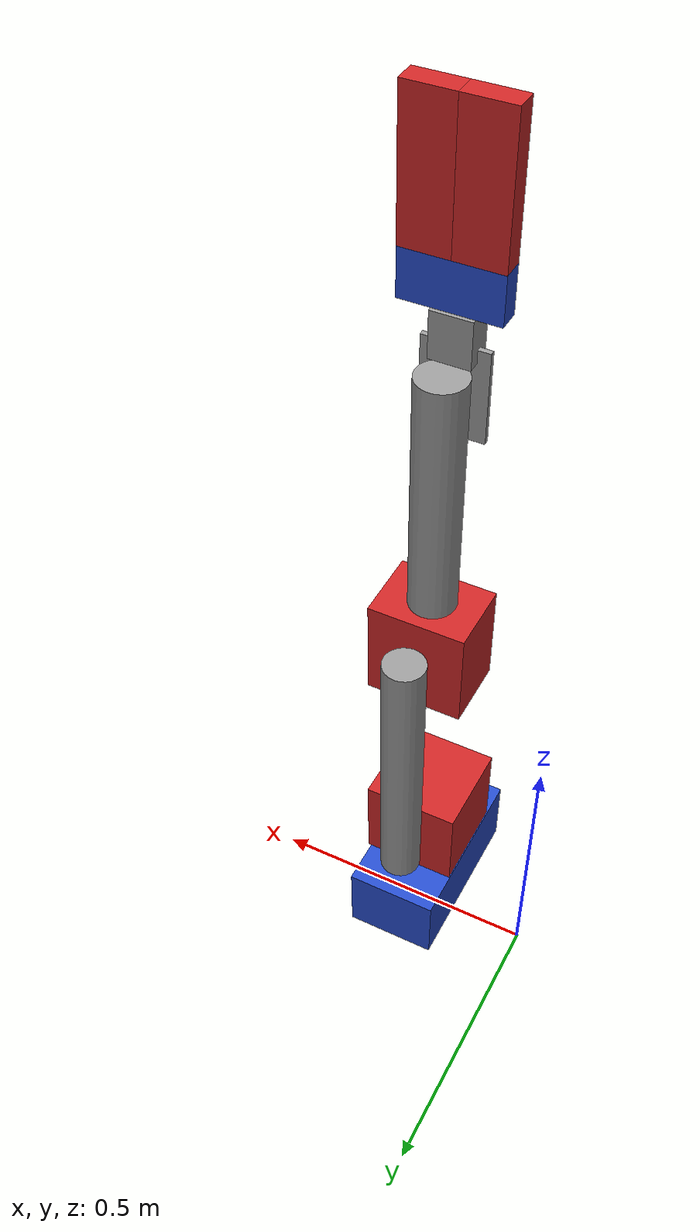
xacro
<?xml version="1.0"?>
<robot xmlns:xacro="http://www.ros.org/wiki/xacro" name="rover_arm_and_wheels">
  <xacro:arg name="can_interface"            default="can0"/>
  <xacro:arg name="initial_positions_file"   default="$(find rover_arm_moveit_config)/config/initial_positions.yaml"/>

  <!-- Rover body root link. Arm attaches here; wheels attach here. -->
  <link name="base_link">
    <inertial>
      <mass value="20.0"/>
      <inertia ixx="1.0" ixy="0" ixz="0" iyy="1.0" iyz="0" izz="1.0"/>
    </inertial>
  </link>

  <!-- Arm description (joints 1-5, spin servo, gripper geometry). -->
  <xacro:include filename="$(find rover_arm_description)/urdf/arm.xacro"/>
  <xacro:include filename="$(find rover_arm_description)/urdf/gripper.xacro"/>
  <xacro:include filename="$(find rover_arm_description)/urdf/common_properties.xacro"/>

  <!-- Attach arm base_structure_link to rover body. -->
  <joint name="arm_base_joint" type="fixed">
    <parent link="base_link"/>
    <child link="base_structure_link"/>
    <origin xyz="0.2 0 0.15" rpy="0 0 0"/>
  </joint>

  <!-- Gripper fixed joint (from rover_arm.urdf.xacro). -->
  <joint name="joint7" type="fixed">
    <parent link="gripper_base_link"/>
    <child link="gripper_claw_link"/>
    <origin xyz="0.005725 0 0.07" rpy="0 0 0"/>
    <axis xyz="0 0 1"/>
  </joint>

  <!-- Wheel links (minimal kinematic geometry). -->
  <xacro:macro name="wheel_link" params="joint_name link_name xyz">
    <link name="${link_name}">
      <inertial>
        <mass value="2.0"/>
        <inertia ixx="0.01" ixy="0" ixz="0" iyy="0.01" iyz="0" izz="0.01"/>
      </inertial>
    </link>
    <joint name="${joint_name}" type="continuous">
      <parent link="base_link"/>
      <child link="${link_name}"/>
      <origin xyz="${xyz}" rpy="0 0 0"/>
      <axis xyz="0 1 0"/>
    </joint>
  </xacro:macro>

  <xacro:wheel_link joint_name="wheel_right_front" link_name="wheel_right_front_link" xyz=" 0.4 -0.6 0"/>
  <xacro:wheel_link joint_name="wheel_right_mid"   link_name="wheel_right_mid_link"   xyz=" 0.0 -0.6 0"/>
  <xacro:wheel_link joint_name="wheel_right_rear"  link_name="wheel_right_rear_link"  xyz="-0.4 -0.6 0"/>
  <xacro:wheel_link joint_name="wheel_left_front"  link_name="wheel_left_front_link"  xyz=" 0.4  0.6 0"/>
  <xacro:wheel_link joint_name="wheel_left_mid"    link_name="wheel_left_mid_link"    xyz=" 0.0  0.6 0"/>
  <xacro:wheel_link joint_name="wheel_left_rear"   link_name="wheel_left_rear_link"   xyz="-0.4  0.6 0"/>

  <!-- Arm ros2_control hardware block (ArmCanInterface). -->
  <xacro:include filename="$(find rover_arm_moveit_config)/config/rover_arm.ros2_control.xacro"/>
  <xacro:rover_arm_ros2_control
      name="RoverArm"
      initial_positions_file="$(arg initial_positions_file)"/>

  <!-- Wheel ros2_control hardware block (WheelCanInterface). -->
  <xacro:include filename="$(find wheel_can_hardware)/urdf/rover_wheels.ros2_control.xacro"/>
  <xacro:rover_wheels_ros2_control
      name="RoverWheels"
      can_interface="$(arg can_interface)"/>

</robot>

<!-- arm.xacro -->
<robot xmlns:xacro="http://www.ros.org/wiki/xacro">

    <link name="base_structure_link">
        <visual>
            <geometry>
                <box size="0.30670 0.1600 0.135"/>
            </geometry>
            <origin xyz="0 0 0" rpy="0 0 1.57" />
            <material name="blue"/>
        </visual>
        <collision>
            <geometry>
                <box size="0.30670 0.1600 0.135"/>
            </geometry>
            <material name="blue"/>
        </collision>
    </link>

    <link name="base_pivot_link">
        <visual>
            <geometry>
                <box size="0.1633 0.1633 0.1633"/>
            </geometry>
            <origin xyz="0 0 0" rpy="0 0 0"/>
            <material name="red"/>
        </visual>
        <collision>
            <geometry>
                <box size="0.1633 0.1633 0.1633"/>
            </geometry>
            <material name="red"/>
        </collision>
    </link>

    <link name="bicep_tube_link">
        <visual>
            <geometry>
                <cylinder radius="0.0348" length="0.508"/>
            </geometry>
            <origin xyz="0 0 0.220" rpy="0 0 0"/>
            <material name="grey"/>
        </visual>
        <collision>
            <geometry>
                <cylinder radius="0.0348" length="0.508"/>
            </geometry>
            <material name="grey"/>
        </collision>
    </link>

    <link name="bicep_gearbox_link">
        <visual>
            <geometry>
                <box size="0.11615 0.158 0.170"/>
            </geometry>
            <origin xyz="0 0 0" rpy="0 0 1.57"/>
            <material name="red"/>
        </visual>
        <collision>
            <geometry>
                <box size="0.11615 0.158 0.170"/>
            </geometry>
            <material name="red"/>
        </collision>
    </link>

   <link name="forearm_tube_link">
        <visual>
            <geometry>
                <cylinder radius="0.03810" length="0.490"/>
            </geometry>
            <origin xyz="0 0 0.150" rpy="0 0 0"/>
            <material name="grey"/>
        </visual>
        <collision>
            <geometry>
                <cylinder radius="0.03810" length="0.490"/>
            </geometry>
            <material name="grey"/>
        </collision>
    </link>

     <link name="bracket_connection_link">
        <visual>
            <geometry>
                <box size="0.008 0.10030 0.14015"/>
            </geometry>
            <origin xyz="0 0 0" rpy="0 0 -1.57"/>
            <material name="grey"/>
        </visual>
        <collision>
            <geometry>
                <box size="0.008 0.10030 0.14015"/>
            </geometry>
            <material name="grey"/>
        </collision>
    </link>

    <link name="gripper_base_link">
        <visual>
            <geometry>
                <box size="0.04445 0.06200 0.07"/>
            </geometry>
            <origin xyz="0 0 0" rpy="0 0 -1.57"/>
            <material name="grey"/>
        </visual>
        <collision>
            <geometry>
                <box size="0.04445 0.06200 0.07"/>
            </geometry>
            <material name="grey"/>
        </collision>
    </link>

    <joint name="joint1" type="revolute">
        <parent link="base_structure_link"/>
        <child link="base_pivot_link"/>
        <origin xyz="0 0 0.1618" rpy="0 0 0"/>
        <axis xyz="0 0 1"/>
        <limit effort="100.0" lower="-1.57" upper="1.57" velocity="1.0" />
    </joint>

    <joint name="joint2" type="revolute">
        <parent link="base_pivot_link"/>
        <child link="bicep_tube_link"/>
        <origin xyz="0 0.11645 0" rpy="0 0 0"/>
        <axis xyz="0 1 0"/>
        <limit effort="100.0" lower="-0.701" upper="1.09" velocity="1.0" />
    </joint>

    <joint name="joint3" type="revolute">
        <parent link="bicep_tube_link"/>
        <child link="bicep_gearbox_link"/>
        <origin xyz="0 -0.092875 0.440" rpy="0 0 0"/>
        <axis xyz="0 1 0"/>
        <limit effort="100.0" lower="0.0" upper="2.109" velocity="1.0" />
    </joint>

   <joint name="joint4" type="revolute">
        <parent link="bicep_gearbox_link"/>
        <child link="forearm_tube_link"/>
        <origin xyz="0 0 0.085" rpy="0 0 0"/>
        <axis xyz=" 0 0 1"/>
        <limit effort="100.0" lower="-3.14159" upper="3.14159" velocity="1.0" />
    </joint>

    <joint name="joint5" type="revolute">
        <parent link="forearm_tube_link"/>
        <child link="bracket_connection_link"/>
        <origin xyz="0 -0.0421 0.35" rpy="0 0 0"/>
        <axis xyz="0 1 0"/>
        <limit effort="100.0" lower="-1.09" upper="1.57" velocity="1.0" />
    </joint>

    <joint name="joint6" type="fixed">
        <parent link="bracket_connection_link"/>
        <child link="gripper_base_link"/>
        <origin xyz="0 0 0.085075" rpy="0 0 0"/>
    </joint>

</robot>

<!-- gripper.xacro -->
<robot xmlns:xacro="http://www.ros.org/wiki/xacro">

    <link name="gripper_claw_link">
        <visual>
            <geometry>
                <box size="0.033 0.14759 0.070"/>
            </geometry>
            <origin xyz="0 0 0" rpy="0 0 -1.57"/>
            <material name="blue"/>
        </visual>
        <collision>
            <geometry>
                <box size="0.033 0.14759 0.070"/>
            </geometry>
            <material name="blue"/>
        </collision>
    </link>

    <link name="right_claw_link">
        <visual>
            <geometry>
                <box size="0.033 0.073795 0.200"/>
            </geometry>
            <origin xyz="0 0 0" rpy="0 0 1.57"/>
            <material name="red"/>
        </visual>
        <collision>
            <geometry>
                <box size="0.033 0.073795 0.200"/>
            </geometry>
            <material name="red"/>
        </collision>
    </link>

    <link name="left_claw_link">
        <visual>
            <geometry>
                <box size="0.033 0.073795 0.200"/>
            </geometry>
            <origin xyz="0 0 0" rpy="0 0 1.57"/>
            <material name="red"/>
        </visual>
        <collision>
            <geometry>
                <box size="0.033 0.073795 0.200"/>
            </geometry>
            <material name="red"/>
        </collision>
    </link>

    <joint name="right_finger" type="prismatic">
        <parent link="gripper_claw_link"/>
        <child link="right_claw_link"/>
        <origin xyz="0.036895 0 0.135" rpy="0 0 0"/>
        <axis xyz="0 1 0"/>
        <limit lower="0.0" upper="0.033" effort="100.0" velocity="1.0"/>
    </joint>

    <joint name="left_finger" type="prismatic">
        <parent link="gripper_claw_link"/>
        <child link="left_claw_link"/>
        <origin xyz="-0.036895 0 0.135" rpy="0 0 0"/>
        <axis xyz="0 1 0"/>
        <mimic joint="right_finger" multiplier="-1.0"/>
        <limit lower="-0.033" upper="0.0" effort="100.0" velocity="1.0"/>
    </joint>

</robot>
